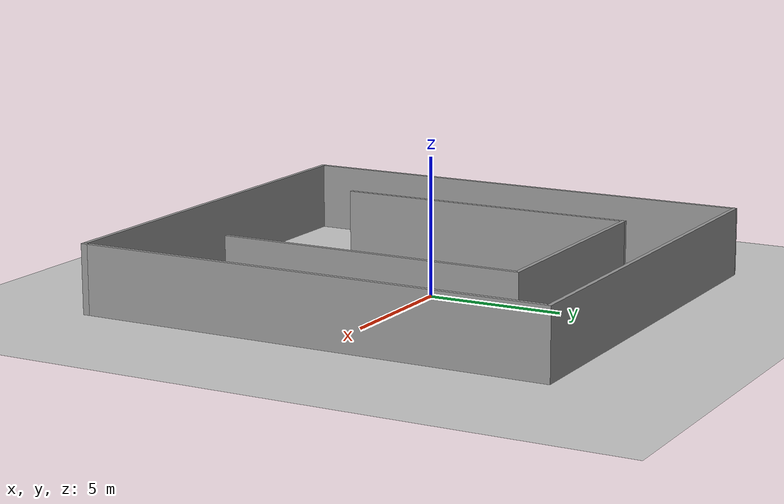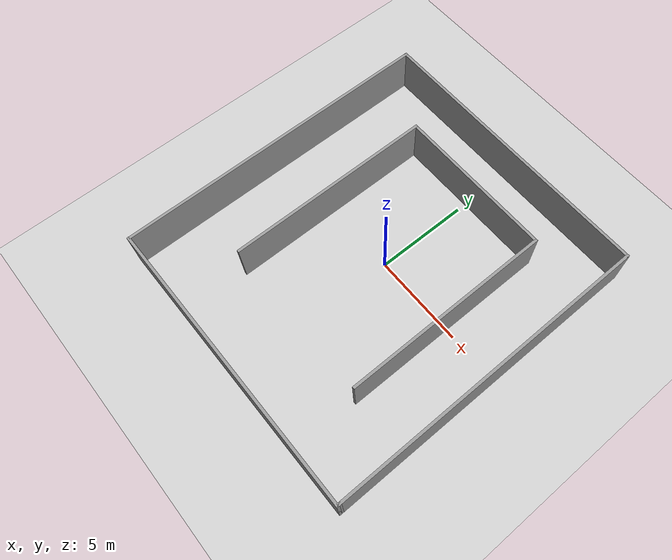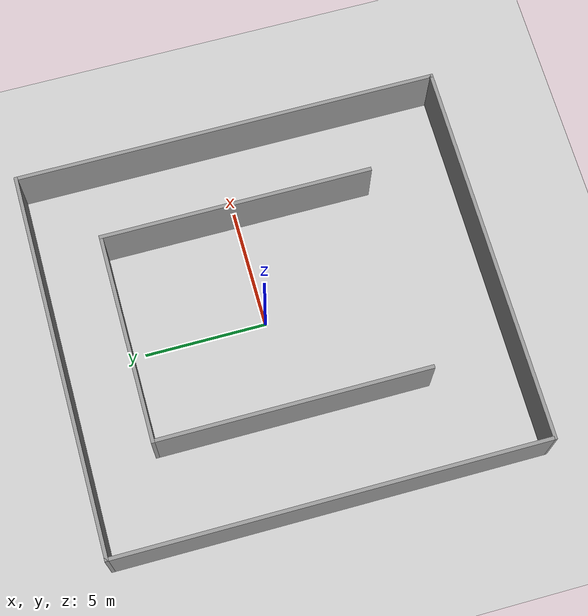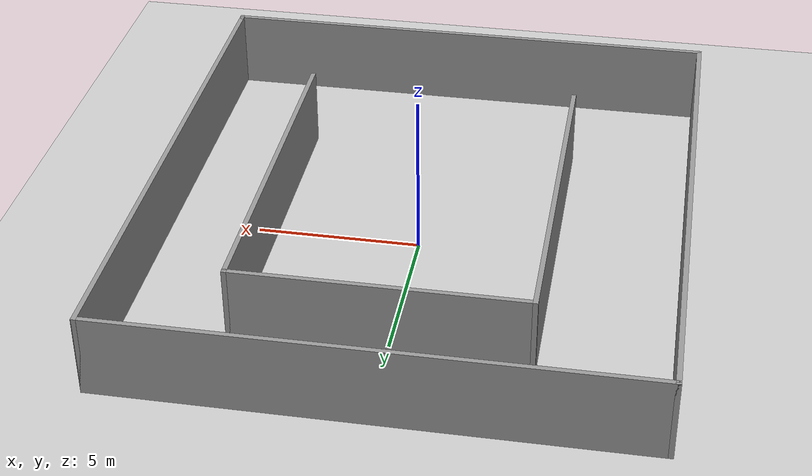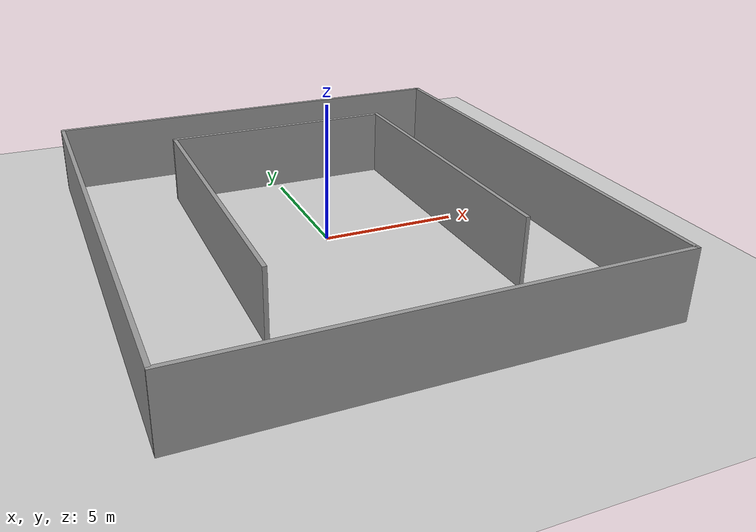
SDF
<sdf version="1.7">
 <world name="default">
  <light name="sun" type="directional">
   <pose>0 0 10 0 -0 0</pose>
   <diffuse>0.8 0.8 0.8 1</diffuse>
   <specular>0.2 0.2 0.2 1</specular>
   <attenuation>
    <range>1000</range>
    <constant>0.9</constant>
    <linear>0.01</linear>
    <quadratic>0.001</quadratic>
   </attenuation>
   <direction>-0.5 0.1 -0.9</direction>
   <spot><inner_angle>0</inner_angle><outer_angle>0</outer_angle><falloff>0</falloff></spot>
  </light>
  <model name="ground_plane">
   <static>1</static>
   <link name="link">
    <collision name="collision">
     <geometry><plane><normal>0 0 1</normal><size>100 100</size></plane></geometry>
     <surface>
      <contact><collide_bitmask>65535</collide_bitmask></contact>
      <friction><ode><mu>100</mu><mu2>50</mu2></ode></friction>
     </surface>
    </collision>
    <visual name="visual">
     <cast_shadows>0</cast_shadows>
     <geometry><plane><normal>0 0 1</normal><size>100 100</size></plane></geometry>
     <material>
      <script><uri>file://media/materials/scripts/gazebo.material</uri><name>Gazebo/Grey</name></script>
     </material>
    </visual>
   </link>
  </model>
  <gravity>0 0 -9.8</gravity>
  <magnetic_field>6e-06 2.3e-05 -4.2e-05</magnetic_field>
  <atmosphere type="adiabatic"/>
  <physics type="ode">
   <max_step_size>0.001</max_step_size>
   <real_time_factor>1</real_time_factor>
   <real_time_update_rate>1000</real_time_update_rate>
  </physics>
  <scene><ambient>0.4 0.4 0.4 1</ambient><background>0.7 0.7 0.7 1</background><shadows>1</shadows></scene>
  <spherical_coordinates>
   <surface_model>EARTH_WGS84</surface_model>
   <latitude_deg>0</latitude_deg>
   <longitude_deg>0</longitude_deg>
   <elevation>0</elevation>
   <heading_deg>0</heading_deg>
  </spherical_coordinates>
  <model name="hrvo_1w">
   <pose>-0.109127 -0.470373 0 0 -0 0</pose>
   <link name="Wall_1">
    <collision name="Wall_1_Collision">
     <geometry><box><size>0.15 0.15 2.5</size></box></geometry>
     <pose>0 0 1.25 0 -0 0</pose>
    </collision>
    <visual name="Wall_1_Visual">
     <pose>0 0 1.25 0 -0 0</pose>
     <geometry><box><size>0.15 0.15 2.5</size></box></geometry>
     <material>
      <script><uri>file://media/materials/scripts/gazebo.material</uri><name>Gazebo/Grey</name></script>
      <ambient>1 1 1 1</ambient>
     </material>
     <meta><layer>0</layer></meta>
    </visual>
    <pose>-7.925 8.725 0 0 -0 0</pose>
   </link>
   <link name="Wall_12">
    <collision name="Wall_12_Collision">
     <geometry><box><size>17.5 0.15 2.5</size></box></geometry>
     <pose>0 0 1.25 0 -0 0</pose>
    </collision>
    <visual name="Wall_12_Visual">
     <pose>0 0 1.25 0 -0 0</pose>
     <geometry><box><size>17.5 0.15 2.5</size></box></geometry>
     <material>
      <script><uri>file://media/materials/scripts/gazebo.material</uri><name>Gazebo/Grey</name></script>
      <ambient>1 1 1 1</ambient>
     </material>
     <meta><layer>0</layer></meta>
    </visual>
    <pose>-7.925 0.05 0 0 -0 -1.5708</pose>
   </link>
   <link name="Wall_14">
    <collision name="Wall_14_Collision">
     <geometry><box><size>11.25 0.15 2.5</size></box></geometry>
     <pose>0 0 1.25 0 -0 0</pose>
    </collision>
    <visual name="Wall_14_Visual">
     <pose>0 0 1.25 0 -0 0</pose>
     <geometry><box><size>11.25 0.15 2.5</size></box></geometry>
     <material>
      <script><uri>file://media/materials/scripts/gazebo.material</uri><name>Gazebo/Grey</name></script>
      <ambient>1 1 1 1</ambient>
     </material>
     <meta><layer>0</layer></meta>
    </visual>
    <pose>-4.02057 0.459011 0 0 -0 -1.5708</pose>
   </link>
   <link name="Wall_16">
    <collision name="Wall_16_Collision">
     <geometry><box><size>11.25 0.15 2.5</size></box></geometry>
     <pose>0 0 1.25 0 -0 0</pose>
    </collision>
    <visual name="Wall_16_Visual">
     <pose>0 0 1.25 0 -0 0</pose>
     <geometry><box><size>11.25 0.15 2.5</size></box></geometry>
     <material>
      <script><uri>file://media/materials/scripts/gazebo.material</uri><name>Gazebo/Grey</name></script>
      <ambient>1 1 1 1</ambient>
     </material>
     <meta><layer>0</layer></meta>
    </visual>
    <pose>4.57943 0.459011 0 0 -0 -1.5708</pose>
   </link>
   <link name="Wall_3">
    <collision name="Wall_3_Collision">
     <geometry><box><size>16 0.15 2.5</size></box></geometry>
     <pose>0 0 1.25 0 -0 0</pose>
    </collision>
    <visual name="Wall_3_Visual">
     <pose>0 0 1.25 0 -0 0</pose>
     <geometry><box><size>16 0.15 2.5</size></box></geometry>
     <material>
      <script><uri>file://media/materials/scripts/gazebo.material</uri><name>Gazebo/Grey</name></script>
      <ambient>1 1 1 1</ambient>
     </material>
     <meta><layer>0</layer></meta>
    </visual>
    <pose>-0 8.725 0 0 -0 0</pose>
   </link>
   <link name="Wall_4">
    <collision name="Wall_4_Collision">
     <geometry><box><size>17.5 0.15 2.5</size></box></geometry>
     <pose>0 0 1.25 0 -0 0</pose>
    </collision>
    <visual name="Wall_4_Visual">
     <pose>0 0 1.25 0 -0 0</pose>
     <geometry><box><size>17.5 0.15 2.5</size></box></geometry>
     <material>
      <script><uri>file://media/materials/scripts/gazebo.material</uri><name>Gazebo/Grey</name></script>
      <ambient>1 1 1 1</ambient>
     </material>
     <meta><layer>0</layer></meta>
    </visual>
    <pose>7.925 0.05 0 0 -0 -1.5708</pose>
   </link>
   <link name="Wall_5">
    <collision name="Wall_5_Collision">
     <geometry><box><size>0.25 0.15 2.5</size></box></geometry>
     <pose>0 0 1.25 0 -0 0</pose>
    </collision>
    <visual name="Wall_5_Visual">
     <pose>0 0 1.25 0 -0 0</pose>
     <geometry><box><size>0.25 0.15 2.5</size></box></geometry>
     <material>
      <script><uri>file://media/materials/scripts/gazebo.material</uri><name>Gazebo/Grey</name></script>
      <ambient>1 1 1 1</ambient>
     </material>
     <meta><layer>0</layer></meta>
    </visual>
    <pose>7.925 -8.675 0 0 -0 -1.5708</pose>
   </link>
   <link name="Wall_6">
    <collision name="Wall_6_Collision">
     <geometry><box><size>16 0.15 2.5</size></box></geometry>
     <pose>0 0 1.25 0 -0 0</pose>
    </collision>
    <visual name="Wall_6_Visual">
     <pose>0 0 1.25 0 -0 0</pose>
     <geometry><box><size>16 0.15 2.5</size></box></geometry>
     <material>
      <script><uri>file://media/materials/scripts/gazebo.material</uri><name>Gazebo/Grey</name></script>
      <ambient>1 1 1 1</ambient>
     </material>
     <meta><layer>0</layer></meta>
    </visual>
    <pose>-0 -8.725 0 0 -0 3.14159</pose>
   </link>
   <link name="Wall_9">
    <collision name="Wall_9_Collision">
     <geometry><box><size>8.75 0.15 2.5</size></box></geometry>
     <pose>0 0 1.25 0 -0 0</pose>
    </collision>
    <visual name="Wall_9_Visual">
     <pose>0 0 1.25 0 -0 0</pose>
     <geometry><box><size>8.75 0.15 2.5</size></box></geometry>
     <material>
      <script><uri>file://media/materials/scripts/gazebo.material</uri><name>Gazebo/Grey</name></script>
      <ambient>1 1 1 1</ambient>
     </material>
     <meta><layer>0</layer></meta>
    </visual>
    <pose>0.279432 6.00901 0 0 -0 0</pose>
   </link>
   <static>1</static>
  </model>
 </world>
</sdf>
